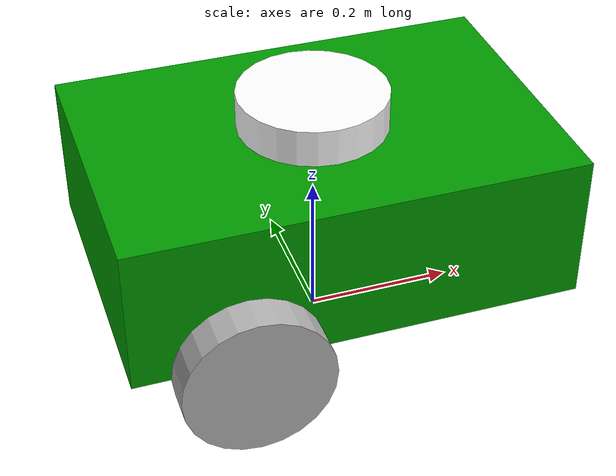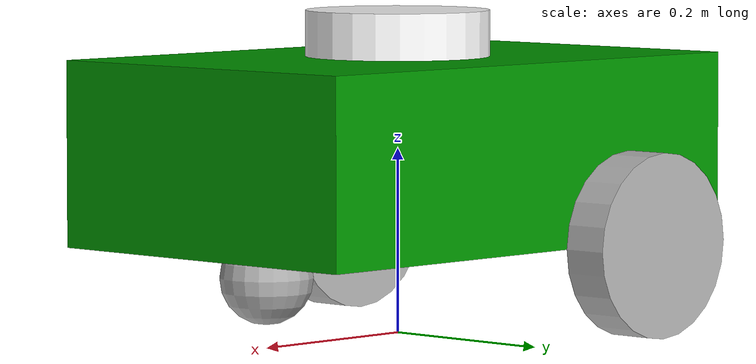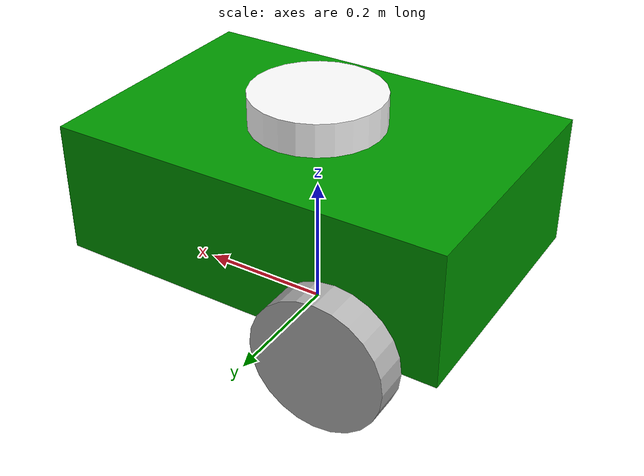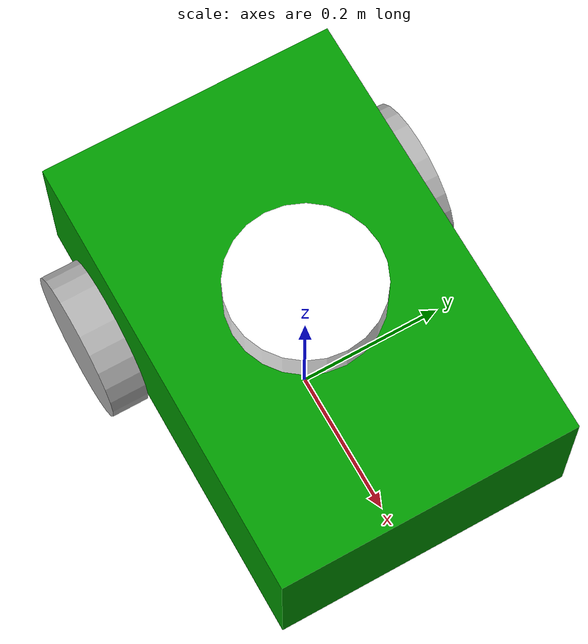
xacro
<?xml version="1.0"?>
<robot name="my_robot" xmlns:xacro="http://www.ros.org/wiki/xacro">

    <!-- Other xacro files -->
    <xacro:include filename="materials.urdf.xacro" />
    <xacro:include filename="inertials.urdf.xacro" />

    <!-- Xacro properties -->
    <xacro:property name="radius_wheels" value="0.1" />
    <xacro:property name="radius_caster_wheel" value="0.05" />
    <xacro:property name="length" value="0.05" />

    <!-- Xacro links -->
    <xacro:macro name="wheels" params="prefix">
        <link name="${prefix}_wheel_link">
            <visual>
                <geometry>
                    <cylinder radius="${radius_wheels}" length="${length}" />
                </geometry>
                <origin xyz="0 0 0" rpy="1.57 0 0" />
                <material name="grey" />
            </visual>

            <collision>
                <geometry>
                    <cylinder radius="${radius_wheels}" length="${length}" />
                </geometry>
                <origin xyz="0 0 0" rpy="1.57 0 0" />
            </collision>
            <xacro:solid_cylinder_inertia
                mass="0.5" radius="${radius_wheels}" length="${length}"
                xyz="0 0 0" rpy="1.57 0 0" />
        </link>
    </xacro:macro>

    <!-- Xacro joints -->
    <xacro:macro name="fixed_joint" params="prefix parent child xyz rpy">
        <joint name="${prefix}_joint" type="fixed">
            <parent link="${parent}" />
            <child link="${child}" />
            <origin xyz="${xyz}" rpy="${rpy}" />
        </joint>
    </xacro:macro>

    <xacro:macro name="continuous_joint" params="prefix parent child xyz rpy axis">
        <joint name="${prefix}_joint" type="continuous">
            <parent link="${parent}" />
            <child link="${child}" />
            <origin xyz="${xyz}" rpy="${rpy}" />
            <axis xyz="${axis}" />
        </joint>
    </xacro:macro>

    <!-- Links Section -->
    <link name="base_link" />
    <link name="main_body_link">
        <visual>
            <geometry>
                <box size="0.6 0.4 0.2" />
            </geometry>
            <origin xyz="0 0 0.1" rpy="0 0 0" />
            <material name="green" />
        </visual>
        <collision>
            <geometry>
                <box size="0.6 0.4 0.2" />
            </geometry>
            <origin xyz="0 0 0.1" rpy="0 0 0" />
        </collision>
        <xacro:solid_box_inertia
            mass="5" x="0.6" y="0.4" z="0.2"
            xyz="0 0 0.1" rpy="0 0 0"/>
    </link>

    <link name="lidar_link">
        <visual>
            <geometry>
                <cylinder radius="${radius_wheels}" length="${length}" />
            </geometry>
            <origin xyz="0 0 0" rpy="0 0 0" />
            <material name="white" />
        </visual>
        <collision>
            <geometry>
                <box size="${radius_wheels*2} ${radius_wheels*2} ${length}" />
            </geometry>
            <origin xyz="0 0 0" rpy="0 0 0" />
        </collision>
    </link>

    <link name="caster_wheel_link">
        <visual>
            <geometry>
                <sphere radius="${radius_caster_wheel}" />
            </geometry>
            <origin xyz="0 0 0" rpy="0 0 0" />
            <material name="grey" />
        </visual>
        <collision>
            <geometry>
                <sphere radius="${radius_caster_wheel}" />
            </geometry>
            <origin xyz="0 0 0" rpy="0 0 0" />
        </collision>
        <xacro:solid_sphere_inertia mass="0.2" radius="${radius_caster_wheel}"/>
    </link>
    <xacro:wheels prefix="left" />
    <xacro:wheels prefix="right" />

    <!-- Joints Section-->
    <xacro:fixed_joint
        prefix="base"
        parent="base_link"
        child="main_body_link"
        xyz="0 0 0.1" rpy="0 0 0"/>

    <xacro:fixed_joint
        prefix="base_lidar"
        parent="main_body_link"
        child="lidar_link"
        xyz="0 0 0.225" rpy="0 0 0"/>

    <xacro:fixed_joint
        prefix="base_caster_wheel"
        parent="main_body_link"
        child="caster_wheel_link"
        xyz="0.2 0 -0.025" rpy="0 0 0" />

    <xacro:continuous_joint
        prefix="base_left_wheel"
        parent="main_body_link"
        child="left_wheel_link"
        xyz="-0.15 0.225 0" rpy="0 0 0"
        axis="0 1 0"/>

    <xacro:continuous_joint
        prefix="base_right_wheel"
        parent="main_body_link"
        child="right_wheel_link"
        xyz="-0.15 -0.225 0" rpy="0 0 0"
        axis="0 1 0"/>

    <!-- Gazebo Section -->
    <gazebo>
        <plugin
            filename="gz-sim-diff-drive-system"
            name="gz::sim::systems::DiffDrive">

            <left_joint>base_left_wheel_joint</left_joint>
            <right_joint>base_right_wheel_joint</right_joint>

            <wheel_separation>0.45</wheel_separation>
            <wheel_radius>${radius_wheels}</wheel_radius>

            <topic>cmd_vel</topic>

        </plugin>
    </gazebo>

</robot>

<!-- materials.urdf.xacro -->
<robot xmlns:xacro="http://www.ros.org/wiki/xacro">
    <material name="grey">
        <color rgba="0.7 0.7 0.7 1" />
    </material>

    <material name="green">
        <color rgba="0 0.6 0 1" />
    </material>

    <material name="white">
        <color rgba="1 1 1 1" />
    </material>
</robot>

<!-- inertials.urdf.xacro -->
<robot name="inertial_macros" xmlns:xacro="http://www.ros.org/wiki/xacro">

    <xacro:macro name="solid_box_inertia" params="mass x y z xyz:='0 0 0' rpy:='0 0 0'">
        <inertial>
            <origin xyz="${xyz}" rpy="${rpy}" />
            <mass value="${mass}"/>
            <inertia
                ixx="${(1.0/12.0) * mass * (y*y + z*z)}" ixy="0" ixz="0"
                iyy="${(1.0/12.0) * mass * (x*x + z*z)}" iyz="0"
                izz="${(1.0/12.0) * mass * (y*y + x*x)}" />
        </inertial>
    </xacro:macro>

    <xacro:macro name="solid_cylinder_inertia" params="mass radius length xyz:='0 0 0' rpy:='0 0 0'">
        <inertial>
            <origin xyz="${xyz}" rpy="${rpy}" />
            <mass value="${mass}"/>
            <inertia
                ixx="${(1.0/12.0) * mass * (3.0 * (radius*radius) + (length*length))}" ixy="0" ixz="0"
                iyy="${(1.0/12.0) * mass * (3.0 * (radius*radius) + (length*length))}" iyz="0"
                izz="${(1.0/2.0) * mass * (radius*radius)}" />
        </inertial>
    </xacro:macro>

    <xacro:macro name="solid_sphere_inertia" params="mass radius xyz:='0 0 0' rpy:='0 0 0'">
        <inertial>
            <origin xyz="${xyz}" rpy="${rpy}" />
            <mass value="${mass}"/>
            <inertia
                ixx="${(2.0/5.0) * mass * (radius*radius)}" ixy="0" ixz="0"
                iyy="${(2.0/5.0) * mass * (radius*radius)}" iyz="0"
                izz="${(2.0/5.0) * mass * (radius*radius)}" />
        </inertial>
    </xacro:macro>

</robot>
